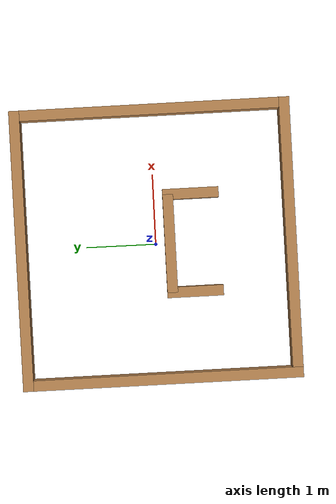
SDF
<?xml version='1.0'?>
<sdf version='1.6'>
  <model name='initial_move_away'>
    <pose frame=''>0 0 0 0 -0 0</pose>
    <link name='Wall_0'>
      <collision name='Wall_0_Collision'>
        <geometry>
          <box>
            <size>4 0.15 0.5</size>
          </box>
        </geometry>
        <pose frame=''>0 0 0.25 0 -0 0</pose>
      </collision>
      <visual name='Wall_0_Visual'>
        <pose frame=''>0 0 0.25 0 -0 0</pose>
        <geometry>
          <box>
            <size>4 0.15 0.5</size>
          </box>
        </geometry>
        <material>
          <script>
            <uri>file://media/materials/scripts/gazebo.material</uri>
            <name>Gazebo/Wood</name>
          </script>
          <ambient>1 1 1 1</ambient>
        </material>
      </visual>
      <pose frame=''>0 1.925 0 0 -0 0</pose>
    </link>
    <link name='Wall_2'>
      <collision name='Wall_2_Collision'>
        <geometry>
          <box>
            <size>4 0.15 0.5</size>
          </box>
        </geometry>
        <pose frame=''>0 0 0.25 0 -0 0</pose>
      </collision>
      <visual name='Wall_2_Visual'>
        <pose frame=''>0 0 0.25 0 -0 0</pose>
        <geometry>
          <box>
            <size>4 0.15 0.5</size>
          </box>
        </geometry>
        <material>
          <script>
            <uri>file://media/materials/scripts/gazebo.material</uri>
            <name>Gazebo/Wood</name>
          </script>
          <ambient>1 1 1 1</ambient>
        </material>
      </visual>
      <pose frame=''>-1.925 0 0 0 0 -1.5708</pose>
    </link>
    <link name='Wall_3'>
      <collision name='Wall_3_Collision'>
        <geometry>
          <box>
            <size>4 0.15 0.5</size>
          </box>
        </geometry>
        <pose frame=''>0 0 0.25 0 -0 0</pose>
      </collision>
      <visual name='Wall_3_Visual'>
        <pose frame=''>0 0 0.25 0 -0 0</pose>
        <geometry>
          <box>
            <size>4 0.15 0.5</size>
          </box>
        </geometry>
        <material>
          <script>
            <uri>file://media/materials/scripts/gazebo.material</uri>
            <name>Gazebo/Wood</name>
          </script>
          <ambient>1 1 1 1</ambient>
        </material>
      </visual>
      <pose frame=''>0 -1.925 0 0 -0 0</pose>
    </link>
    <link name='Wall_4'>
      <collision name='Wall_4_Collision'>
        <geometry>
          <box>
            <size>4 0.15 0.5</size>
          </box>
        </geometry>
        <pose frame=''>0 0 0.25 0 -0 0</pose>
      </collision>
      <visual name='Wall_4_Visual'>
        <pose frame=''>0 0 0.25 0 -0 0</pose>
        <geometry>
          <box>
            <size>4 0.15 0.5</size>
          </box>
        </geometry>
        <material>
          <script>
            <uri>file://media/materials/scripts/gazebo.material</uri>
            <name>Gazebo/Wood</name>
          </script>
          <ambient>1 1 1 1</ambient>
        </material>
      </visual>
      <pose frame=''>1.925 0 0 0 -0 1.5708</pose>
    </link>
    <link name='Wall_5'>
      <collision name='Wall_5_Collision'>
        <geometry>
          <box>
            <size>1.4 0.15 0.5</size>
          </box>
        </geometry>
        <pose frame=''>0 0 0.25 0 -0 0</pose>
      </collision>
      <visual name='Wall_5_Visual'>
        <pose frame=''>0 0 0.25 0 -0 0</pose>
        <geometry>
          <box>
            <size>1.4 0.15 0.5</size>
          </box>
        </geometry>
        <material>
          <script>
            <uri>file://media/materials/scripts/gazebo.material</uri>
            <name>Gazebo/Wood</name>
          </script>
          <ambient>1 1 1 1</ambient>
        </material>
      </visual>
      <pose frame=''>0 -0.2 0 0 -0 0</pose>
    </link>
    <link name='Wall_6'>
      <collision name='Wall_6_Collision'>
        <geometry>
          <box>
            <size>0.8 0.15 0.5</size>
          </box>
        </geometry>
        <pose frame=''>0 0 0.25 0 -0 0</pose>
      </collision>
      <visual name='Wall_6_Visual'>
        <pose frame=''>0 0 0.25 0 -0 0</pose>
        <geometry>
          <box>
            <size>0.8 0.15 0.5</size>
          </box>
        </geometry>
        <material>
          <script>
            <uri>file://media/materials/scripts/gazebo.material</uri>
            <name>Gazebo/Wood</name>
          </script>
          <ambient>1 1 1 1</ambient>
        </material>
      </visual>
      <pose frame=''>0.7 -0.525 0 0 -0 1.5708</pose>
    </link>
    <link name='Wall_7'>
      <collision name='Wall_7_Collision'>
        <geometry>
          <box>
            <size>0.8 0.15 0.5</size>
          </box>
        </geometry>
        <pose frame=''>0 0 0.25 0 -0 0</pose>
      </collision>
      <visual name='Wall_7_Visual'>
        <pose frame=''>0 0 0.25 0 -0 0</pose>
        <geometry>
          <box>
            <size>0.8 0.15 0.5</size>
          </box>
        </geometry>
        <material>
          <script>
            <uri>file://media/materials/scripts/gazebo.material</uri>
            <name>Gazebo/Wood</name>
          </script>
          <ambient>1 1 1 1</ambient>
        </material>
      </visual>
      <pose frame=''>-0.7 -0.525 0 0 -0 1.5708</pose>
    </link>
    <static>1</static>
  </model>
</sdf>
